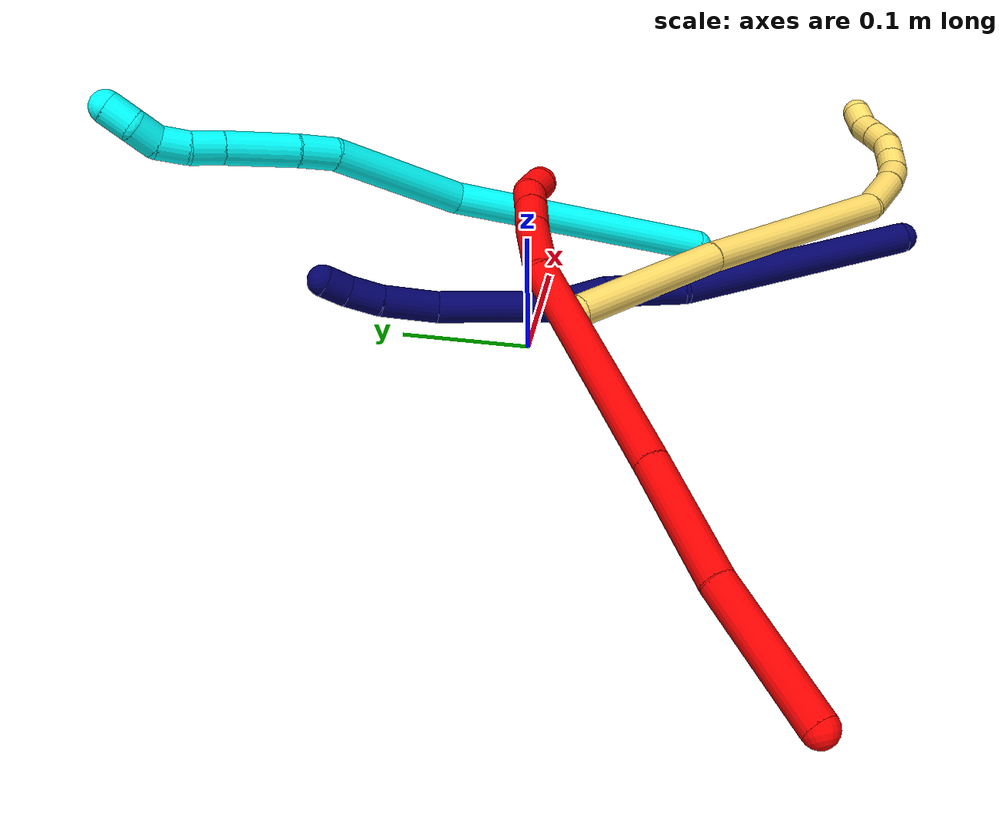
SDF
<sdf version="1.7">
 <world name="default">
  <model name="2">
   <static>0</static>
   <link name="2">
    <collision name="collision-cylinder-e_1_1_4">
     <pose>0.021224 0.005028 -0.04859 -3.03849 0.409868 -2.65495</pose>
     <geometry><cylinder><radius>0.0125</radius><length>0.106522</length></cylinder></geometry>
     <surface>
      <friction><ode><mu>1.16</mu><mu2>1.16</mu2><slip1>0</slip1><slip2>0</slip2></ode></friction>
      <contact><ode><kp>1e+06</kp><kd>1</kd><max_vel>0</max_vel><min_depth>0.001</min_depth></ode></contact>
     </surface>
    </collision>
    <visual name="visual-cylinder-e_1_1_4">
     <pose>0.021224 0.005028 -0.04859 -3.03849 0.409868 -2.65495</pose>
     <geometry><cylinder><radius>0.0125</radius><length>0.106522</length></cylinder></geometry>
     <material><ambient>1 0 0 1</ambient></material>
    </visual>
    <collision name="collision-cylinder-e_2_4_5">
     <pose>0.057779 0.018836 -0.140716 -2.94257 0.332403 -2.06785</pose>
     <geometry><cylinder><radius>0.0125</radius><length>0.093969</length></cylinder></geometry>
     <surface>
      <friction><ode><mu>1.16</mu><mu2>1.16</mu2><slip1>0</slip1><slip2>0</slip2></ode></friction>
      <contact><ode><kp>1e+06</kp><kd>1</kd><max_vel>0</max_vel><min_depth>0.001</min_depth></ode></contact>
     </surface>
    </collision>
    <visual name="visual-cylinder-e_2_4_5">
     <pose>0.057779 0.018836 -0.140716 -2.94257 0.332403 -2.06785</pose>
     <geometry><cylinder><radius>0.0125</radius><length>0.093969</length></cylinder></geometry>
     <material><ambient>1 0 0 1</ambient></material>
    </visual>
    <collision name="collision-cylinder-e_3_5_6">
     <pose>0.104117 0.045667 -0.266436 -2.9254 0.353045 -2.0485</pose>
     <geometry><cylinder><radius>0.0125</radius><length>0.179348</length></cylinder></geometry>
     <surface>
      <friction><ode><mu>1.16</mu><mu2>1.16</mu2><slip1>0</slip1><slip2>0</slip2></ode></friction>
      <contact><ode><kp>1e+06</kp><kd>1</kd><max_vel>0</max_vel><min_depth>0.001</min_depth></ode></contact>
     </surface>
    </collision>
    <visual name="visual-cylinder-e_3_5_6">
     <pose>0.104117 0.045667 -0.266436 -2.9254 0.353045 -2.0485</pose>
     <geometry><cylinder><radius>0.0125</radius><length>0.179348</length></cylinder></geometry>
     <material><ambient>1 0 0 1</ambient></material>
    </visual>
    <collision name="collision-cylinder-e_4_6_7">
     <pose>0.140779 0.076719 -0.370862 -2.61255 0.216169 -0.762028</pose>
     <geometry><cylinder><radius>0.0125</radius><length>0.052754</length></cylinder></geometry>
     <surface>
      <friction><ode><mu>1.16</mu><mu2>1.16</mu2><slip1>0</slip1><slip2>0</slip2></ode></friction>
      <contact><ode><kp>1e+06</kp><kd>1</kd><max_vel>0</max_vel><min_depth>0.001</min_depth></ode></contact>
     </surface>
    </collision>
    <visual name="visual-cylinder-e_4_6_7">
     <pose>0.140779 0.076719 -0.370862 -2.61255 0.216169 -0.762028</pose>
     <geometry><cylinder><radius>0.0125</radius><length>0.052754</length></cylinder></geometry>
     <material><ambient>1 0 0 1</ambient></material>
    </visual>
    <collision name="collision-cylinder-e_5_7_8">
     <pose>0.148341 0.096964 -0.404221 -2.56427 0.14252 -0.471805</pose>
     <geometry><cylinder><radius>0.0125</radius><length>0.026809</length></cylinder></geometry>
     <surface>
      <friction><ode><mu>1.16</mu><mu2>1.16</mu2><slip1>0</slip1><slip2>0</slip2></ode></friction>
      <contact><ode><kp>1e+06</kp><kd>1</kd><max_vel>0</max_vel><min_depth>0.001</min_depth></ode></contact>
     </surface>
    </collision>
    <visual name="visual-cylinder-e_5_7_8">
     <pose>0.148341 0.096964 -0.404221 -2.56427 0.14252 -0.471805</pose>
     <geometry><cylinder><radius>0.0125</radius><length>0.026809</length></cylinder></geometry>
     <material><ambient>1 0 0 1</ambient></material>
    </visual>
    <collision name="collision-cylinder-e_6_8_9">
     <pose>0.152097 0.109674 -0.423827 -2.5693 0.181403 -0.599619</pose>
     <geometry><cylinder><radius>0.0125</radius><length>0.020531</length></cylinder></geometry>
     <surface>
      <friction><ode><mu>1.16</mu><mu2>1.16</mu2><slip1>0</slip1><slip2>0</slip2></ode></friction>
      <contact><ode><kp>1e+06</kp><kd>1</kd><max_vel>0</max_vel><min_depth>0.001</min_depth></ode></contact>
     </surface>
    </collision>
    <visual name="visual-cylinder-e_6_8_9">
     <pose>0.152097 0.109674 -0.423827 -2.5693 0.181403 -0.599619</pose>
     <geometry><cylinder><radius>0.0125</radius><length>0.020531</length></cylinder></geometry>
     <material><ambient>1 0 0 1</ambient></material>
    </visual>
    <collision name="collision-cylinder-e_7_9_2">
     <pose>0.152179 0.123189 -0.438042 -2.18932 -0.177263 0.341276</pose>
     <geometry><cylinder><radius>0.0125</radius><length>0.020068</length></cylinder></geometry>
     <surface>
      <friction><ode><mu>1.16</mu><mu2>1.16</mu2><slip1>0</slip1><slip2>0</slip2></ode></friction>
      <contact><ode><kp>1e+06</kp><kd>1</kd><max_vel>0</max_vel><min_depth>0.001</min_depth></ode></contact>
     </surface>
    </collision>
    <visual name="visual-cylinder-e_7_9_2">
     <pose>0.152179 0.123189 -0.438042 -2.18932 -0.177263 0.341276</pose>
     <geometry><cylinder><radius>0.0125</radius><length>0.020068</length></cylinder></geometry>
     <material><ambient>1 0 0 1</ambient></material>
    </visual>
    <collision name="collision-sphere-2">
     <pose>0.15041 0.131236 -0.443769 0 -0 0</pose>
     <geometry><sphere><radius>0.0125</radius></sphere></geometry>
     <surface>
      <friction><ode><mu>1.16</mu><mu2>1.16</mu2><slip1>0</slip1><slip2>0</slip2></ode></friction>
      <contact><ode><kp>1e+06</kp><kd>1</kd><max_vel>0</max_vel><min_depth>0.001</min_depth></ode></contact>
     </surface>
    </collision>
    <visual name="visual-sphere-2">
     <pose>0.15041 0.131236 -0.443769 0 -0 0</pose>
     <geometry><sphere><radius>0.0125</radius></sphere></geometry>
     <material><ambient>1 0 0 1</ambient></material>
    </visual>
    <collision name="collision-sphere-9">
     <pose>0.153949 0.115142 -0.432315 0 -0 0</pose>
     <geometry><sphere><radius>0.0125</radius></sphere></geometry>
     <surface>
      <friction><ode><mu>1.16</mu><mu2>1.16</mu2><slip1>0</slip1><slip2>0</slip2></ode></friction>
      <contact><ode><kp>1e+06</kp><kd>1</kd><max_vel>0</max_vel><min_depth>0.001</min_depth></ode></contact>
     </surface>
    </collision>
    <visual name="visual-sphere-9">
     <pose>0.153949 0.115142 -0.432315 0 -0 0</pose>
     <geometry><sphere><radius>0.0125</radius></sphere></geometry>
     <material><ambient>1 0 0 1</ambient></material>
    </visual>
    <collision name="collision-sphere-4">
     <pose>0.042448 0.010055 -0.09718 0 -0 0</pose>
     <geometry><sphere><radius>0.0125</radius></sphere></geometry>
     <surface>
      <friction><ode><mu>1.16</mu><mu2>1.16</mu2><slip1>0</slip1><slip2>0</slip2></ode></friction>
      <contact><ode><kp>1e+06</kp><kd>1</kd><max_vel>0</max_vel><min_depth>0.001</min_depth></ode></contact>
     </surface>
    </collision>
    <visual name="visual-sphere-4">
     <pose>0.042448 0.010055 -0.09718 0 -0 0</pose>
     <geometry><sphere><radius>0.0125</radius></sphere></geometry>
     <material><ambient>1 0 0 1</ambient></material>
    </visual>
    <collision name="collision-sphere-1">
     <geometry><sphere><radius>0.0125</radius></sphere></geometry>
     <surface>
      <friction><ode><mu>1.16</mu><mu2>1.16</mu2><slip1>0</slip1><slip2>0</slip2></ode></friction>
      <contact><ode><kp>1e+06</kp><kd>1</kd><max_vel>0</max_vel><min_depth>0.001</min_depth></ode></contact>
     </surface>
    </collision>
    <visual name="visual-sphere-1">
     <geometry><sphere><radius>0.0125</radius></sphere></geometry>
     <material><ambient>1 0 0 1</ambient></material>
    </visual>
    <collision name="collision-sphere-8">
     <pose>0.150245 0.104206 -0.415339 0 -0 0</pose>
     <geometry><sphere><radius>0.0125</radius></sphere></geometry>
     <surface>
      <friction><ode><mu>1.16</mu><mu2>1.16</mu2><slip1>0</slip1><slip2>0</slip2></ode></friction>
      <contact><ode><kp>1e+06</kp><kd>1</kd><max_vel>0</max_vel><min_depth>0.001</min_depth></ode></contact>
     </surface>
    </collision>
    <visual name="visual-sphere-8">
     <pose>0.150245 0.104206 -0.415339 0 -0 0</pose>
     <geometry><sphere><radius>0.0125</radius></sphere></geometry>
     <material><ambient>1 0 0 1</ambient></material>
    </visual>
    <collision name="collision-sphere-5">
     <pose>0.073111 0.027617 -0.184252 0 -0 0</pose>
     <geometry><sphere><radius>0.0125</radius></sphere></geometry>
     <surface>
      <friction><ode><mu>1.16</mu><mu2>1.16</mu2><slip1>0</slip1><slip2>0</slip2></ode></friction>
      <contact><ode><kp>1e+06</kp><kd>1</kd><max_vel>0</max_vel><min_depth>0.001</min_depth></ode></contact>
     </surface>
    </collision>
    <visual name="visual-sphere-5">
     <pose>0.073111 0.027617 -0.184252 0 -0 0</pose>
     <geometry><sphere><radius>0.0125</radius></sphere></geometry>
     <material><ambient>1 0 0 1</ambient></material>
    </visual>
    <collision name="collision-sphere-6">
     <pose>0.135122 0.063717 -0.348621 0 -0 0</pose>
     <geometry><sphere><radius>0.0125</radius></sphere></geometry>
     <surface>
      <friction><ode><mu>1.16</mu><mu2>1.16</mu2><slip1>0</slip1><slip2>0</slip2></ode></friction>
      <contact><ode><kp>1e+06</kp><kd>1</kd><max_vel>0</max_vel><min_depth>0.001</min_depth></ode></contact>
     </surface>
    </collision>
    <visual name="visual-sphere-6">
     <pose>0.135122 0.063717 -0.348621 0 -0 0</pose>
     <geometry><sphere><radius>0.0125</radius></sphere></geometry>
     <material><ambient>1 0 0 1</ambient></material>
    </visual>
    <collision name="collision-sphere-7">
     <pose>0.146437 0.089722 -0.393103 0 -0 0</pose>
     <geometry><sphere><radius>0.0125</radius></sphere></geometry>
     <surface>
      <friction><ode><mu>1.16</mu><mu2>1.16</mu2><slip1>0</slip1><slip2>0</slip2></ode></friction>
      <contact><ode><kp>1e+06</kp><kd>1</kd><max_vel>0</max_vel><min_depth>0.001</min_depth></ode></contact>
     </surface>
    </collision>
    <visual name="visual-sphere-7">
     <pose>0.146437 0.089722 -0.393103 0 -0 0</pose>
     <geometry><sphere><radius>0.0125</radius></sphere></geometry>
     <material><ambient>1 0 0 1</ambient></material>
    </visual>
    <inertial>
     <pose>0.087887 0.043733 -0.228154 0 -0 0</pose>
     <mass>0.5</mass>
     <inertia>
      <ixx>-0.000825</ixx>
      <ixy>0</ixy>
      <ixz>0</ixz>
      <iyy>-0.000141</iyy>
      <iyz>0</iyz>
      <izz>-0.000404</izz>
     </inertia>
    </inertial>
   </link>
   <pose>-0.345363 -0.230359 0.012492 -2.30082 0.536684 1.57643</pose>
  </model>
  <model name="3">
   <static>0</static>
   <link name="3">
    <collision name="collision-cylinder-e_1_1_4">
     <pose>-0.036321 0.097602 0.021806 -1.35099 -0.348364 0.280132</pose>
     <geometry><cylinder><radius>0.0125</radius><length>0.212799</length></cylinder></geometry>
     <surface>
      <friction><ode><mu>1.16</mu><mu2>1.16</mu2><slip1>0</slip1><slip2>0</slip2></ode></friction>
      <contact><ode><kp>1e+06</kp><kd>1</kd><max_vel>0</max_vel><min_depth>0.001</min_depth></ode></contact>
     </surface>
    </collision>
    <visual name="visual-cylinder-e_1_1_4">
     <pose>-0.036321 0.097602 0.021806 -1.35099 -0.348364 0.280132</pose>
     <geometry><cylinder><radius>0.0125</radius><length>0.212799</length></cylinder></geometry>
     <material><ambient>0.003922 1 0.996078 1</ambient></material>
    </visual>
    <collision name="collision-cylinder-e_2_4_5">
     <pose>-0.082223 0.24405 0.069742 -1.07958 -0.171274 0.102779</pose>
     <geometry><cylinder><radius>0.0125</radius><length>0.112435</length></cylinder></geometry>
     <surface>
      <friction><ode><mu>1.16</mu><mu2>1.16</mu2><slip1>0</slip1><slip2>0</slip2></ode></friction>
      <contact><ode><kp>1e+06</kp><kd>1</kd><max_vel>0</max_vel><min_depth>0.001</min_depth></ode></contact>
     </surface>
    </collision>
    <visual name="visual-cylinder-e_2_4_5">
     <pose>-0.082223 0.24405 0.069742 -1.07958 -0.171274 0.102779</pose>
     <geometry><cylinder><radius>0.0125</radius><length>0.112435</length></cylinder></geometry>
     <material><ambient>0.003922 1 0.996078 1</ambient></material>
    </visual>
    <collision name="collision-cylinder-e_3_5_6">
     <pose>-0.097825 0.305124 0.101991 -1.10686 -0.414722 0.258517</pose>
     <geometry><cylinder><radius>0.0125</radius><length>0.029882</length></cylinder></geometry>
     <surface>
      <friction><ode><mu>1.16</mu><mu2>1.16</mu2><slip1>0</slip1><slip2>0</slip2></ode></friction>
      <contact><ode><kp>1e+06</kp><kd>1</kd><max_vel>0</max_vel><min_depth>0.001</min_depth></ode></contact>
     </surface>
    </collision>
    <visual name="visual-cylinder-e_3_5_6">
     <pose>-0.097825 0.305124 0.101991 -1.10686 -0.414722 0.258517</pose>
     <geometry><cylinder><radius>0.0125</radius><length>0.029882</length></cylinder></geometry>
     <material><ambient>0.003922 1 0.996078 1</ambient></material>
    </visual>
    <collision name="collision-cylinder-e_4_6_7">
     <pose>-0.116702 0.340048 0.117574 -1.17569 -0.481771 0.324551</pose>
     <geometry><cylinder><radius>0.0125</radius><length>0.055496</length></cylinder></geometry>
     <surface>
      <friction><ode><mu>1.16</mu><mu2>1.16</mu2><slip1>0</slip1><slip2>0</slip2></ode></friction>
      <contact><ode><kp>1e+06</kp><kd>1</kd><max_vel>0</max_vel><min_depth>0.001</min_depth></ode></contact>
     </surface>
    </collision>
    <visual name="visual-cylinder-e_4_6_7">
     <pose>-0.116702 0.340048 0.117574 -1.17569 -0.481771 0.324551</pose>
     <geometry><cylinder><radius>0.0125</radius><length>0.055496</length></cylinder></geometry>
     <material><ambient>0.003922 1 0.996078 1</ambient></material>
    </visual>
    <collision name="collision-cylinder-e_5_7_8">
     <pose>-0.135594 0.372405 0.131483 -1.13969 -0.516148 0.335093</pose>
     <geometry><cylinder><radius>0.0125</radius><length>0.024456</length></cylinder></geometry>
     <surface>
      <friction><ode><mu>1.16</mu><mu2>1.16</mu2><slip1>0</slip1><slip2>0</slip2></ode></friction>
      <contact><ode><kp>1e+06</kp><kd>1</kd><max_vel>0</max_vel><min_depth>0.001</min_depth></ode></contact>
     </surface>
    </collision>
    <visual name="visual-cylinder-e_5_7_8">
     <pose>-0.135594 0.372405 0.131483 -1.13969 -0.516148 0.335093</pose>
     <geometry><cylinder><radius>0.0125</radius><length>0.024456</length></cylinder></geometry>
     <material><ambient>0.003922 1 0.996078 1</ambient></material>
    </visual>
    <collision name="collision-cylinder-e_6_8_9">
     <pose>-0.145642 0.392329 0.138918 -1.28717 -0.359125 0.270659</pose>
     <geometry><cylinder><radius>0.0125</radius><length>0.022834</length></cylinder></geometry>
     <surface>
      <friction><ode><mu>1.16</mu><mu2>1.16</mu2><slip1>0</slip1><slip2>0</slip2></ode></friction>
      <contact><ode><kp>1e+06</kp><kd>1</kd><max_vel>0</max_vel><min_depth>0.001</min_depth></ode></contact>
     </surface>
    </collision>
    <visual name="visual-cylinder-e_6_8_9">
     <pose>-0.145642 0.392329 0.138918 -1.28717 -0.359125 0.270659</pose>
     <geometry><cylinder><radius>0.0125</radius><length>0.022834</length></cylinder></geometry>
     <material><ambient>0.003922 1 0.996078 1</ambient></material>
    </visual>
    <collision name="collision-cylinder-e_7_9_10">
     <pose>-0.148602 0.412001 0.145855 -1.17379 0.102761 -0.068377</pose>
     <geometry><cylinder><radius>0.0125</radius><length>0.020515</length></cylinder></geometry>
     <surface>
      <friction><ode><mu>1.16</mu><mu2>1.16</mu2><slip1>0</slip1><slip2>0</slip2></ode></friction>
      <contact><ode><kp>1e+06</kp><kd>1</kd><max_vel>0</max_vel><min_depth>0.001</min_depth></ode></contact>
     </surface>
    </collision>
    <visual name="visual-cylinder-e_7_9_10">
     <pose>-0.148602 0.412001 0.145855 -1.17379 0.102761 -0.068377</pose>
     <geometry><cylinder><radius>0.0125</radius><length>0.020515</length></cylinder></geometry>
     <material><ambient>0.003922 1 0.996078 1</ambient></material>
    </visual>
    <collision name="collision-cylinder-e_8_10_2">
     <pose>-0.146898 0.43218 0.149626 -1.58694 0.060417 -0.0614</pose>
     <geometry><cylinder><radius>0.0125</radius><length>0.021582</length></cylinder></geometry>
     <surface>
      <friction><ode><mu>1.16</mu><mu2>1.16</mu2><slip1>0</slip1><slip2>0</slip2></ode></friction>
      <contact><ode><kp>1e+06</kp><kd>1</kd><max_vel>0</max_vel><min_depth>0.001</min_depth></ode></contact>
     </surface>
    </collision>
    <visual name="visual-cylinder-e_8_10_2">
     <pose>-0.146898 0.43218 0.149626 -1.58694 0.060417 -0.0614</pose>
     <geometry><cylinder><radius>0.0125</radius><length>0.021582</length></cylinder></geometry>
     <material><ambient>0.003922 1 0.996078 1</ambient></material>
    </visual>
    <collision name="collision-sphere-2">
     <pose>-0.146247 0.44295 0.149452 0 -0 0</pose>
     <geometry><sphere><radius>0.0125</radius></sphere></geometry>
     <surface>
      <friction><ode><mu>1.16</mu><mu2>1.16</mu2><slip1>0</slip1><slip2>0</slip2></ode></friction>
      <contact><ode><kp>1e+06</kp><kd>1</kd><max_vel>0</max_vel><min_depth>0.001</min_depth></ode></contact>
     </surface>
    </collision>
    <visual name="visual-sphere-2">
     <pose>-0.146247 0.44295 0.149452 0 -0 0</pose>
     <geometry><sphere><radius>0.0125</radius></sphere></geometry>
     <material><ambient>0.003922 1 0.996078 1</ambient></material>
    </visual>
    <collision name="collision-sphere-10">
     <pose>-0.14755 0.42141 0.1498 0 -0 0</pose>
     <geometry><sphere><radius>0.0125</radius></sphere></geometry>
     <surface>
      <friction><ode><mu>1.16</mu><mu2>1.16</mu2><slip1>0</slip1><slip2>0</slip2></ode></friction>
      <contact><ode><kp>1e+06</kp><kd>1</kd><max_vel>0</max_vel><min_depth>0.001</min_depth></ode></contact>
     </surface>
    </collision>
    <visual name="visual-sphere-10">
     <pose>-0.14755 0.42141 0.1498 0 -0 0</pose>
     <geometry><sphere><radius>0.0125</radius></sphere></geometry>
     <material><ambient>0.003922 1 0.996078 1</ambient></material>
    </visual>
    <collision name="collision-sphere-9">
     <pose>-0.149654 0.402591 0.141909 0 -0 0</pose>
     <geometry><sphere><radius>0.0125</radius></sphere></geometry>
     <surface>
      <friction><ode><mu>1.16</mu><mu2>1.16</mu2><slip1>0</slip1><slip2>0</slip2></ode></friction>
      <contact><ode><kp>1e+06</kp><kd>1</kd><max_vel>0</max_vel><min_depth>0.001</min_depth></ode></contact>
     </surface>
    </collision>
    <visual name="visual-sphere-9">
     <pose>-0.149654 0.402591 0.141909 0 -0 0</pose>
     <geometry><sphere><radius>0.0125</radius></sphere></geometry>
     <material><ambient>0.003922 1 0.996078 1</ambient></material>
    </visual>
    <collision name="collision-sphere-4">
     <pose>-0.072641 0.195204 0.043613 0 -0 0</pose>
     <geometry><sphere><radius>0.0125</radius></sphere></geometry>
     <surface>
      <friction><ode><mu>1.16</mu><mu2>1.16</mu2><slip1>0</slip1><slip2>0</slip2></ode></friction>
      <contact><ode><kp>1e+06</kp><kd>1</kd><max_vel>0</max_vel><min_depth>0.001</min_depth></ode></contact>
     </surface>
    </collision>
    <visual name="visual-sphere-4">
     <pose>-0.072641 0.195204 0.043613 0 -0 0</pose>
     <geometry><sphere><radius>0.0125</radius></sphere></geometry>
     <material><ambient>0.003922 1 0.996078 1</ambient></material>
    </visual>
    <collision name="collision-sphere-1">
     <geometry><sphere><radius>0.0125</radius></sphere></geometry>
     <surface>
      <friction><ode><mu>1.16</mu><mu2>1.16</mu2><slip1>0</slip1><slip2>0</slip2></ode></friction>
      <contact><ode><kp>1e+06</kp><kd>1</kd><max_vel>0</max_vel><min_depth>0.001</min_depth></ode></contact>
     </surface>
    </collision>
    <visual name="visual-sphere-1">
     <geometry><sphere><radius>0.0125</radius></sphere></geometry>
     <material><ambient>0.003922 1 0.996078 1</ambient></material>
    </visual>
    <collision name="collision-sphere-8">
     <pose>-0.141629 0.382067 0.135927 0 -0 0</pose>
     <geometry><sphere><radius>0.0125</radius></sphere></geometry>
     <surface>
      <friction><ode><mu>1.16</mu><mu2>1.16</mu2><slip1>0</slip1><slip2>0</slip2></ode></friction>
      <contact><ode><kp>1e+06</kp><kd>1</kd><max_vel>0</max_vel><min_depth>0.001</min_depth></ode></contact>
     </surface>
    </collision>
    <visual name="visual-sphere-8">
     <pose>-0.141629 0.382067 0.135927 0 -0 0</pose>
     <geometry><sphere><radius>0.0125</radius></sphere></geometry>
     <material><ambient>0.003922 1 0.996078 1</ambient></material>
    </visual>
    <collision name="collision-sphere-5">
     <pose>-0.091805 0.292895 0.095872 0 -0 0</pose>
     <geometry><sphere><radius>0.0125</radius></sphere></geometry>
     <surface>
      <friction><ode><mu>1.16</mu><mu2>1.16</mu2><slip1>0</slip1><slip2>0</slip2></ode></friction>
      <contact><ode><kp>1e+06</kp><kd>1</kd><max_vel>0</max_vel><min_depth>0.001</min_depth></ode></contact>
     </surface>
    </collision>
    <visual name="visual-sphere-5">
     <pose>-0.091805 0.292895 0.095872 0 -0 0</pose>
     <geometry><sphere><radius>0.0125</radius></sphere></geometry>
     <material><ambient>0.003922 1 0.996078 1</ambient></material>
    </visual>
    <collision name="collision-sphere-6">
     <pose>-0.103845 0.317353 0.10811 0 -0 0</pose>
     <geometry><sphere><radius>0.0125</radius></sphere></geometry>
     <surface>
      <friction><ode><mu>1.16</mu><mu2>1.16</mu2><slip1>0</slip1><slip2>0</slip2></ode></friction>
      <contact><ode><kp>1e+06</kp><kd>1</kd><max_vel>0</max_vel><min_depth>0.001</min_depth></ode></contact>
     </surface>
    </collision>
    <visual name="visual-sphere-6">
     <pose>-0.103845 0.317353 0.10811 0 -0 0</pose>
     <geometry><sphere><radius>0.0125</radius></sphere></geometry>
     <material><ambient>0.003922 1 0.996078 1</ambient></material>
    </visual>
    <collision name="collision-sphere-7">
     <pose>-0.129559 0.362744 0.127039 0 -0 0</pose>
     <geometry><sphere><radius>0.0125</radius></sphere></geometry>
     <surface>
      <friction><ode><mu>1.16</mu><mu2>1.16</mu2><slip1>0</slip1><slip2>0</slip2></ode></friction>
      <contact><ode><kp>1e+06</kp><kd>1</kd><max_vel>0</max_vel><min_depth>0.001</min_depth></ode></contact>
     </surface>
    </collision>
    <visual name="visual-sphere-7">
     <pose>-0.129559 0.362744 0.127039 0 -0 0</pose>
     <geometry><sphere><radius>0.0125</radius></sphere></geometry>
     <material><ambient>0.003922 1 0.996078 1</ambient></material>
    </visual>
    <inertial>
     <pose>-0.078468 0.224088 0.069327 0 -0 0</pose>
     <mass>0.5</mass>
     <inertia>
      <ixx>0.001095</ixx>
      <ixy>0</ixy>
      <ixz>0</ixz>
      <iyy>0.000581</iyy>
      <iyz>0</iyz>
      <izz>-0.000554</izz>
     </inertia>
    </inertial>
   </link>
   <pose>0.14833 -0.11691 0.011496 0.848664 -0.80192 -0.720211</pose>
  </model>
  <model name="5">
   <static>0</static>
   <link name="5">
    <collision name="collision-cylinder-e_1_1_4">
     <pose>0.022988 -0.006616 0.064241 0.102629 0.341968 0.017736</pose>
     <geometry><cylinder><radius>0.0125</radius><length>0.1371</length></cylinder></geometry>
     <surface>
      <friction><ode><mu>1.16</mu><mu2>1.16</mu2><slip1>0</slip1><slip2>0</slip2></ode></friction>
      <contact><ode><kp>1e+06</kp><kd>1</kd><max_vel>0</max_vel><min_depth>0.001</min_depth></ode></contact>
     </surface>
    </collision>
    <visual name="visual-cylinder-e_1_1_4">
     <pose>0.022988 -0.006616 0.064241 0.102629 0.341968 0.017736</pose>
     <geometry><cylinder><radius>0.0125</radius><length>0.1371</length></cylinder></geometry>
     <material><ambient>1 0.858824 0.4 1</ambient></material>
    </visual>
    <collision name="collision-cylinder-e_2_4_5">
     <pose>0.075687 -0.016603 0.217988 0.037635 0.320297 0.00608</pose>
     <geometry><cylinder><radius>0.0125</radius><length>0.188739</length></cylinder></geometry>
     <surface>
      <friction><ode><mu>1.16</mu><mu2>1.16</mu2><slip1>0</slip1><slip2>0</slip2></ode></friction>
      <contact><ode><kp>1e+06</kp><kd>1</kd><max_vel>0</max_vel><min_depth>0.001</min_depth></ode></contact>
     </surface>
    </collision>
    <visual name="visual-cylinder-e_2_4_5">
     <pose>0.075687 -0.016603 0.217988 0.037635 0.320297 0.00608</pose>
     <geometry><cylinder><radius>0.0125</radius><length>0.188739</length></cylinder></geometry>
     <material><ambient>1 0.858824 0.4 1</ambient></material>
    </visual>
    <collision name="collision-cylinder-e_3_5_6">
     <pose>0.105523 -0.026989 0.330857 0.291731 0.005064 0.000744</pose>
     <geometry><cylinder><radius>0.0125</radius><length>0.048786</length></cylinder></geometry>
     <surface>
      <friction><ode><mu>1.16</mu><mu2>1.16</mu2><slip1>0</slip1><slip2>0</slip2></ode></friction>
      <contact><ode><kp>1e+06</kp><kd>1</kd><max_vel>0</max_vel><min_depth>0.001</min_depth></ode></contact>
     </surface>
    </collision>
    <visual name="visual-cylinder-e_3_5_6">
     <pose>0.105523 -0.026989 0.330857 0.291731 0.005064 0.000744</pose>
     <geometry><cylinder><radius>0.0125</radius><length>0.048786</length></cylinder></geometry>
     <material><ambient>1 0.858824 0.4 1</ambient></material>
    </visual>
    <collision name="collision-cylinder-e_4_6_7">
     <pose>0.103811 -0.038056 0.365555 0.343326 -0.151304 -0.02628</pose>
     <geometry><cylinder><radius>0.0125</radius><length>0.024355</length></cylinder></geometry>
     <surface>
      <friction><ode><mu>1.16</mu><mu2>1.16</mu2><slip1>0</slip1><slip2>0</slip2></ode></friction>
      <contact><ode><kp>1e+06</kp><kd>1</kd><max_vel>0</max_vel><min_depth>0.001</min_depth></ode></contact>
     </surface>
    </collision>
    <visual name="visual-cylinder-e_4_6_7">
     <pose>0.103811 -0.038056 0.365555 0.343326 -0.151304 -0.02628</pose>
     <geometry><cylinder><radius>0.0125</radius><length>0.024355</length></cylinder></geometry>
     <material><ambient>1 0.858824 0.4 1</ambient></material>
    </visual>
    <collision name="collision-cylinder-e_5_7_8">
     <pose>0.098404 -0.047812 0.384585 0.637928 -0.356946 -0.119005</pose>
     <geometry><cylinder><radius>0.0125</radius><length>0.020443</length></cylinder></geometry>
     <surface>
      <friction><ode><mu>1.16</mu><mu2>1.16</mu2><slip1>0</slip1><slip2>0</slip2></ode></friction>
      <contact><ode><kp>1e+06</kp><kd>1</kd><max_vel>0</max_vel><min_depth>0.001</min_depth></ode></contact>
     </surface>
    </collision>
    <visual name="visual-cylinder-e_5_7_8">
     <pose>0.098404 -0.047812 0.384585 0.637928 -0.356946 -0.119005</pose>
     <geometry><cylinder><radius>0.0125</radius><length>0.020443</length></cylinder></geometry>
     <material><ambient>1 0.858824 0.4 1</ambient></material>
    </visual>
    <collision name="collision-cylinder-e_6_8_9">
     <pose>0.091196 -0.059546 0.399381 0.703901 -0.372135 -0.138043</pose>
     <geometry><cylinder><radius>0.0125</radius><length>0.020003</length></cylinder></geometry>
     <surface>
      <friction><ode><mu>1.16</mu><mu2>1.16</mu2><slip1>0</slip1><slip2>0</slip2></ode></friction>
      <contact><ode><kp>1e+06</kp><kd>1</kd><max_vel>0</max_vel><min_depth>0.001</min_depth></ode></contact>
     </surface>
    </collision>
    <visual name="visual-cylinder-e_6_8_9">
     <pose>0.091196 -0.059546 0.399381 0.703901 -0.372135 -0.138043</pose>
     <geometry><cylinder><radius>0.0125</radius><length>0.020003</length></cylinder></geometry>
     <material><ambient>1 0.858824 0.4 1</ambient></material>
    </visual>
    <collision name="collision-cylinder-e_7_9_10">
     <pose>0.080284 -0.070623 0.411663 0.772522 -0.7884 -0.335172</pose>
     <geometry><cylinder><radius>0.0125</radius><length>0.020517</length></cylinder></geometry>
     <surface>
      <friction><ode><mu>1.16</mu><mu2>1.16</mu2><slip1>0</slip1><slip2>0</slip2></ode></friction>
      <contact><ode><kp>1e+06</kp><kd>1</kd><max_vel>0</max_vel><min_depth>0.001</min_depth></ode></contact>
     </surface>
    </collision>
    <visual name="visual-cylinder-e_7_9_10">
     <pose>0.080284 -0.070623 0.411663 0.772522 -0.7884 -0.335172</pose>
     <geometry><cylinder><radius>0.0125</radius><length>0.020517</length></cylinder></geometry>
     <material><ambient>1 0.858824 0.4 1</ambient></material>
    </visual>
    <collision name="collision-cylinder-e_8_10_11">
     <pose>0.065681 -0.080143 0.422003 0.714016 -0.820596 -0.321688</pose>
     <geometry><cylinder><radius>0.0125</radius><length>0.020032</length></cylinder></geometry>
     <surface>
      <friction><ode><mu>1.16</mu><mu2>1.16</mu2><slip1>0</slip1><slip2>0</slip2></ode></friction>
      <contact><ode><kp>1e+06</kp><kd>1</kd><max_vel>0</max_vel><min_depth>0.001</min_depth></ode></contact>
     </surface>
    </collision>
    <visual name="visual-cylinder-e_8_10_11">
     <pose>0.065681 -0.080143 0.422003 0.714016 -0.820596 -0.321688</pose>
     <geometry><cylinder><radius>0.0125</radius><length>0.020032</length></cylinder></geometry>
     <material><ambient>1 0.858824 0.4 1</ambient></material>
    </visual>
    <collision name="collision-cylinder-e_9_11_2">
     <pose>0.053686 -0.091613 0.432594 0.910907 -0.48493 -0.24111</pose>
     <geometry><cylinder><radius>0.0125</radius><length>0.020024</length></cylinder></geometry>
     <surface>
      <friction><ode><mu>1.16</mu><mu2>1.16</mu2><slip1>0</slip1><slip2>0</slip2></ode></friction>
      <contact><ode><kp>1e+06</kp><kd>1</kd><max_vel>0</max_vel><min_depth>0.001</min_depth></ode></contact>
     </surface>
    </collision>
    <visual name="visual-cylinder-e_9_11_2">
     <pose>0.053686 -0.091613 0.432594 0.910907 -0.48493 -0.24111</pose>
     <geometry><cylinder><radius>0.0125</radius><length>0.020024</length></cylinder></geometry>
     <material><ambient>1 0.858824 0.4 1</ambient></material>
    </visual>
    <collision name="collision-sphere-2">
     <pose>0.049019 -0.098611 0.438024 0 -0 0</pose>
     <geometry><sphere><radius>0.0125</radius></sphere></geometry>
     <surface>
      <friction><ode><mu>1.16</mu><mu2>1.16</mu2><slip1>0</slip1><slip2>0</slip2></ode></friction>
      <contact><ode><kp>1e+06</kp><kd>1</kd><max_vel>0</max_vel><min_depth>0.001</min_depth></ode></contact>
     </surface>
    </collision>
    <visual name="visual-sphere-2">
     <pose>0.049019 -0.098611 0.438024 0 -0 0</pose>
     <geometry><sphere><radius>0.0125</radius></sphere></geometry>
     <material><ambient>1 0.858824 0.4 1</ambient></material>
    </visual>
    <collision name="collision-sphere-11">
     <pose>0.058353 -0.084615 0.427164 0 -0 0</pose>
     <geometry><sphere><radius>0.0125</radius></sphere></geometry>
     <surface>
      <friction><ode><mu>1.16</mu><mu2>1.16</mu2><slip1>0</slip1><slip2>0</slip2></ode></friction>
      <contact><ode><kp>1e+06</kp><kd>1</kd><max_vel>0</max_vel><min_depth>0.001</min_depth></ode></contact>
     </surface>
    </collision>
    <visual name="visual-sphere-11">
     <pose>0.058353 -0.084615 0.427164 0 -0 0</pose>
     <geometry><sphere><radius>0.0125</radius></sphere></geometry>
     <material><ambient>1 0.858824 0.4 1</ambient></material>
    </visual>
    <collision name="collision-sphere-10">
     <pose>0.073008 -0.075671 0.416842 0 -0 0</pose>
     <geometry><sphere><radius>0.0125</radius></sphere></geometry>
     <surface>
      <friction><ode><mu>1.16</mu><mu2>1.16</mu2><slip1>0</slip1><slip2>0</slip2></ode></friction>
      <contact><ode><kp>1e+06</kp><kd>1</kd><max_vel>0</max_vel><min_depth>0.001</min_depth></ode></contact>
     </surface>
    </collision>
    <visual name="visual-sphere-10">
     <pose>0.073008 -0.075671 0.416842 0 -0 0</pose>
     <geometry><sphere><radius>0.0125</radius></sphere></geometry>
     <material><ambient>1 0.858824 0.4 1</ambient></material>
    </visual>
    <collision name="collision-sphere-9">
     <pose>0.087559 -0.065576 0.406483 0 -0 0</pose>
     <geometry><sphere><radius>0.0125</radius></sphere></geometry>
     <surface>
      <friction><ode><mu>1.16</mu><mu2>1.16</mu2><slip1>0</slip1><slip2>0</slip2></ode></friction>
      <contact><ode><kp>1e+06</kp><kd>1</kd><max_vel>0</max_vel><min_depth>0.001</min_depth></ode></contact>
     </surface>
    </collision>
    <visual name="visual-sphere-9">
     <pose>0.087559 -0.065576 0.406483 0 -0 0</pose>
     <geometry><sphere><radius>0.0125</radius></sphere></geometry>
     <material><ambient>1 0.858824 0.4 1</ambient></material>
    </visual>
    <collision name="collision-sphere-4">
     <pose>0.045975 -0.013232 0.128481 0 -0 0</pose>
     <geometry><sphere><radius>0.0125</radius></sphere></geometry>
     <surface>
      <friction><ode><mu>1.16</mu><mu2>1.16</mu2><slip1>0</slip1><slip2>0</slip2></ode></friction>
      <contact><ode><kp>1e+06</kp><kd>1</kd><max_vel>0</max_vel><min_depth>0.001</min_depth></ode></contact>
     </surface>
    </collision>
    <visual name="visual-sphere-4">
     <pose>0.045975 -0.013232 0.128481 0 -0 0</pose>
     <geometry><sphere><radius>0.0125</radius></sphere></geometry>
     <material><ambient>1 0.858824 0.4 1</ambient></material>
    </visual>
    <collision name="collision-sphere-1">
     <geometry><sphere><radius>0.0125</radius></sphere></geometry>
     <surface>
      <friction><ode><mu>1.16</mu><mu2>1.16</mu2><slip1>0</slip1><slip2>0</slip2></ode></friction>
      <contact><ode><kp>1e+06</kp><kd>1</kd><max_vel>0</max_vel><min_depth>0.001</min_depth></ode></contact>
     </surface>
    </collision>
    <visual name="visual-sphere-1">
     <geometry><sphere><radius>0.0125</radius></sphere></geometry>
     <material><ambient>1 0.858824 0.4 1</ambient></material>
    </visual>
    <collision name="collision-sphere-8">
     <pose>0.094832 -0.053516 0.392278 0 -0 0</pose>
     <geometry><sphere><radius>0.0125</radius></sphere></geometry>
     <surface>
      <friction><ode><mu>1.16</mu><mu2>1.16</mu2><slip1>0</slip1><slip2>0</slip2></ode></friction>
      <contact><ode><kp>1e+06</kp><kd>1</kd><max_vel>0</max_vel><min_depth>0.001</min_depth></ode></contact>
     </surface>
    </collision>
    <visual name="visual-sphere-8">
     <pose>0.094832 -0.053516 0.392278 0 -0 0</pose>
     <geometry><sphere><radius>0.0125</radius></sphere></geometry>
     <material><ambient>1 0.858824 0.4 1</ambient></material>
    </visual>
    <collision name="collision-sphere-5">
     <pose>0.105399 -0.019973 0.307495 0 -0 0</pose>
     <geometry><sphere><radius>0.0125</radius></sphere></geometry>
     <surface>
      <friction><ode><mu>1.16</mu><mu2>1.16</mu2><slip1>0</slip1><slip2>0</slip2></ode></friction>
      <contact><ode><kp>1e+06</kp><kd>1</kd><max_vel>0</max_vel><min_depth>0.001</min_depth></ode></contact>
     </surface>
    </collision>
    <visual name="visual-sphere-5">
     <pose>0.105399 -0.019973 0.307495 0 -0 0</pose>
     <geometry><sphere><radius>0.0125</radius></sphere></geometry>
     <material><ambient>1 0.858824 0.4 1</ambient></material>
    </visual>
    <collision name="collision-sphere-6">
     <pose>0.105647 -0.034004 0.35422 0 -0 0</pose>
     <geometry><sphere><radius>0.0125</radius></sphere></geometry>
     <surface>
      <friction><ode><mu>1.16</mu><mu2>1.16</mu2><slip1>0</slip1><slip2>0</slip2></ode></friction>
      <contact><ode><kp>1e+06</kp><kd>1</kd><max_vel>0</max_vel><min_depth>0.001</min_depth></ode></contact>
     </surface>
    </collision>
    <visual name="visual-sphere-6">
     <pose>0.105647 -0.034004 0.35422 0 -0 0</pose>
     <geometry><sphere><radius>0.0125</radius></sphere></geometry>
     <material><ambient>1 0.858824 0.4 1</ambient></material>
    </visual>
    <collision name="collision-sphere-7">
     <pose>0.101976 -0.042109 0.376891 0 -0 0</pose>
     <geometry><sphere><radius>0.0125</radius></sphere></geometry>
     <surface>
      <friction><ode><mu>1.16</mu><mu2>1.16</mu2><slip1>0</slip1><slip2>0</slip2></ode></friction>
      <contact><ode><kp>1e+06</kp><kd>1</kd><max_vel>0</max_vel><min_depth>0.001</min_depth></ode></contact>
     </surface>
    </collision>
    <visual name="visual-sphere-7">
     <pose>0.101976 -0.042109 0.376891 0 -0 0</pose>
     <geometry><sphere><radius>0.0125</radius></sphere></geometry>
     <material><ambient>1 0.858824 0.4 1</ambient></material>
    </visual>
    <inertial>
     <pose>0.065974 -0.026683 0.232816 0 -0 0</pose>
     <mass>0.5</mass>
     <inertia>
      <ixx>0.000775</ixx>
      <ixy>0</ixy>
      <ixz>0</ixz>
      <iyy>0.000803</iyy>
      <iyz>0</iyz>
      <izz>-0.000164</izz>
     </inertia>
    </inertial>
   </link>
   <pose>-0.013016 -0.041413 0.049348 -1.91032 -0.42239 -1.89923</pose>
  </model>
  <model name="7">
   <static>0</static>
   <link name="7">
    <collision name="collision-cylinder-e_1_1_4">
     <pose>-0.020913 0.03051 0.094254 -0.313059 -0.208042 0.032949</pose>
     <geometry><cylinder><radius>0.0125</radius><length>0.202505</length></cylinder></geometry>
     <surface>
      <friction><ode><mu>1.16</mu><mu2>1.16</mu2><slip1>0</slip1><slip2>0</slip2></ode></friction>
      <contact><ode><kp>1e+06</kp><kd>1</kd><max_vel>0</max_vel><min_depth>0.001</min_depth></ode></contact>
     </surface>
    </collision>
    <visual name="visual-cylinder-e_1_1_4">
     <pose>-0.020913 0.03051 0.094254 -0.313059 -0.208042 0.032949</pose>
     <geometry><cylinder><radius>0.0125</radius><length>0.202505</length></cylinder></geometry>
     <material><ambient>0.003922 0 0.403922 1</ambient></material>
    </visual>
    <collision name="collision-cylinder-e_2_4_5">
     <pose>-0.05056 0.06078 0.219684 0.007724 -0.27314 -0.001062</pose>
     <geometry><cylinder><radius>0.0125</radius><length>0.064753</length></cylinder></geometry>
     <surface>
      <friction><ode><mu>1.16</mu><mu2>1.16</mu2><slip1>0</slip1><slip2>0</slip2></ode></friction>
      <contact><ode><kp>1e+06</kp><kd>1</kd><max_vel>0</max_vel><min_depth>0.001</min_depth></ode></contact>
     </surface>
    </collision>
    <visual name="visual-cylinder-e_2_4_5">
     <pose>-0.05056 0.06078 0.219684 0.007724 -0.27314 -0.001062</pose>
     <geometry><cylinder><radius>0.0125</radius><length>0.064753</length></cylinder></geometry>
     <material><ambient>0.003922 0 0.403922 1</ambient></material>
    </visual>
    <collision name="collision-cylinder-e_3_5_6">
     <pose>-0.063744 0.069581 0.271131 -0.419538 -0.197844 0.042253</pose>
     <geometry><cylinder><radius>0.0125</radius><length>0.045277</length></cylinder></geometry>
     <surface>
      <friction><ode><mu>1.16</mu><mu2>1.16</mu2><slip1>0</slip1><slip2>0</slip2></ode></friction>
      <contact><ode><kp>1e+06</kp><kd>1</kd><max_vel>0</max_vel><min_depth>0.001</min_depth></ode></contact>
     </surface>
    </collision>
    <visual name="visual-cylinder-e_3_5_6">
     <pose>-0.063744 0.069581 0.271131 -0.419538 -0.197844 0.042253</pose>
     <geometry><cylinder><radius>0.0125</radius><length>0.045277</length></cylinder></geometry>
     <material><ambient>0.003922 0 0.403922 1</ambient></material>
    </visual>
    <collision name="collision-cylinder-e_4_6_7">
     <pose>-0.082715 0.079063 0.335745 -0.009927 -0.316461 0.001584</pose>
     <geometry><cylinder><radius>0.0125</radius><length>0.093323</length></cylinder></geometry>
     <surface>
      <friction><ode><mu>1.16</mu><mu2>1.16</mu2><slip1>0</slip1><slip2>0</slip2></ode></friction>
      <contact><ode><kp>1e+06</kp><kd>1</kd><max_vel>0</max_vel><min_depth>0.001</min_depth></ode></contact>
     </surface>
    </collision>
    <visual name="visual-cylinder-e_4_6_7">
     <pose>-0.082715 0.079063 0.335745 -0.009927 -0.316461 0.001584</pose>
     <geometry><cylinder><radius>0.0125</radius><length>0.093323</length></cylinder></geometry>
     <material><ambient>0.003922 0 0.403922 1</ambient></material>
    </visual>
    <collision name="collision-cylinder-e_5_7_8">
     <pose>-0.108903 0.084247 0.399194 -0.243372 -0.534977 0.067004</pose>
     <geometry><cylinder><radius>0.0125</radius><length>0.045769</length></cylinder></geometry>
     <surface>
      <friction><ode><mu>1.16</mu><mu2>1.16</mu2><slip1>0</slip1><slip2>0</slip2></ode></friction>
      <contact><ode><kp>1e+06</kp><kd>1</kd><max_vel>0</max_vel><min_depth>0.001</min_depth></ode></contact>
     </surface>
    </collision>
    <visual name="visual-cylinder-e_5_7_8">
     <pose>-0.108903 0.084247 0.399194 -0.243372 -0.534977 0.067004</pose>
     <geometry><cylinder><radius>0.0125</radius><length>0.045769</length></cylinder></geometry>
     <material><ambient>0.003922 0 0.403922 1</ambient></material>
    </visual>
    <collision name="collision-cylinder-e_6_8_9">
     <pose>-0.129348 0.090864 0.428878 -0.175251 -0.685159 0.062642</pose>
     <geometry><cylinder><radius>0.0125</radius><length>0.027745</length></cylinder></geometry>
     <surface>
      <friction><ode><mu>1.16</mu><mu2>1.16</mu2><slip1>0</slip1><slip2>0</slip2></ode></friction>
      <contact><ode><kp>1e+06</kp><kd>1</kd><max_vel>0</max_vel><min_depth>0.001</min_depth></ode></contact>
     </surface>
    </collision>
    <visual name="visual-cylinder-e_6_8_9">
     <pose>-0.129348 0.090864 0.428878 -0.175251 -0.685159 0.062642</pose>
     <geometry><cylinder><radius>0.0125</radius><length>0.027745</length></cylinder></geometry>
     <material><ambient>0.003922 0 0.403922 1</ambient></material>
    </visual>
    <collision name="collision-cylinder-e_7_9_2">
     <pose>-0.145753 0.094686 0.446121 -0.284546 -0.832127 0.126416</pose>
     <geometry><cylinder><radius>0.0125</radius><length>0.020628</length></cylinder></geometry>
     <surface>
      <friction><ode><mu>1.16</mu><mu2>1.16</mu2><slip1>0</slip1><slip2>0</slip2></ode></friction>
      <contact><ode><kp>1e+06</kp><kd>1</kd><max_vel>0</max_vel><min_depth>0.001</min_depth></ode></contact>
     </surface>
    </collision>
    <visual name="visual-cylinder-e_7_9_2">
     <pose>-0.145753 0.094686 0.446121 -0.284546 -0.832127 0.126416</pose>
     <geometry><cylinder><radius>0.0125</radius><length>0.020628</length></cylinder></geometry>
     <material><ambient>0.003922 0 0.403922 1</ambient></material>
    </visual>
    <collision name="collision-sphere-2">
     <pose>-0.153378 0.096636 0.452786 0 -0 0</pose>
     <geometry><sphere><radius>0.0125</radius></sphere></geometry>
     <surface>
      <friction><ode><mu>1.16</mu><mu2>1.16</mu2><slip1>0</slip1><slip2>0</slip2></ode></friction>
      <contact><ode><kp>1e+06</kp><kd>1</kd><max_vel>0</max_vel><min_depth>0.001</min_depth></ode></contact>
     </surface>
    </collision>
    <visual name="visual-sphere-2">
     <pose>-0.153378 0.096636 0.452786 0 -0 0</pose>
     <geometry><sphere><radius>0.0125</radius></sphere></geometry>
     <material><ambient>0.003922 0 0.403922 1</ambient></material>
    </visual>
    <collision name="collision-sphere-9">
     <pose>-0.138127 0.092737 0.439455 0 -0 0</pose>
     <geometry><sphere><radius>0.0125</radius></sphere></geometry>
     <surface>
      <friction><ode><mu>1.16</mu><mu2>1.16</mu2><slip1>0</slip1><slip2>0</slip2></ode></friction>
      <contact><ode><kp>1e+06</kp><kd>1</kd><max_vel>0</max_vel><min_depth>0.001</min_depth></ode></contact>
     </surface>
    </collision>
    <visual name="visual-sphere-9">
     <pose>-0.138127 0.092737 0.439455 0 -0 0</pose>
     <geometry><sphere><radius>0.0125</radius></sphere></geometry>
     <material><ambient>0.003922 0 0.403922 1</ambient></material>
    </visual>
    <collision name="collision-sphere-4">
     <pose>-0.041826 0.061021 0.188509 0 -0 0</pose>
     <geometry><sphere><radius>0.0125</radius></sphere></geometry>
     <surface>
      <friction><ode><mu>1.16</mu><mu2>1.16</mu2><slip1>0</slip1><slip2>0</slip2></ode></friction>
      <contact><ode><kp>1e+06</kp><kd>1</kd><max_vel>0</max_vel><min_depth>0.001</min_depth></ode></contact>
     </surface>
    </collision>
    <visual name="visual-sphere-4">
     <pose>-0.041826 0.061021 0.188509 0 -0 0</pose>
     <geometry><sphere><radius>0.0125</radius></sphere></geometry>
     <material><ambient>0.003922 0 0.403922 1</ambient></material>
    </visual>
    <collision name="collision-sphere-1">
     <geometry><sphere><radius>0.0125</radius></sphere></geometry>
     <surface>
      <friction><ode><mu>1.16</mu><mu2>1.16</mu2><slip1>0</slip1><slip2>0</slip2></ode></friction>
      <contact><ode><kp>1e+06</kp><kd>1</kd><max_vel>0</max_vel><min_depth>0.001</min_depth></ode></contact>
     </surface>
    </collision>
    <visual name="visual-sphere-1">
     <geometry><sphere><radius>0.0125</radius></sphere></geometry>
     <material><ambient>0.003922 0 0.403922 1</ambient></material>
    </visual>
    <collision name="collision-sphere-8">
     <pose>-0.12057 0.088991 0.418301 0 -0 0</pose>
     <geometry><sphere><radius>0.0125</radius></sphere></geometry>
     <surface>
      <friction><ode><mu>1.16</mu><mu2>1.16</mu2><slip1>0</slip1><slip2>0</slip2></ode></friction>
      <contact><ode><kp>1e+06</kp><kd>1</kd><max_vel>0</max_vel><min_depth>0.001</min_depth></ode></contact>
     </surface>
    </collision>
    <visual name="visual-sphere-8">
     <pose>-0.12057 0.088991 0.418301 0 -0 0</pose>
     <geometry><sphere><radius>0.0125</radius></sphere></geometry>
     <material><ambient>0.003922 0 0.403922 1</ambient></material>
    </visual>
    <collision name="collision-sphere-5">
     <pose>-0.059294 0.060539 0.250859 0 -0 0</pose>
     <geometry><sphere><radius>0.0125</radius></sphere></geometry>
     <surface>
      <friction><ode><mu>1.16</mu><mu2>1.16</mu2><slip1>0</slip1><slip2>0</slip2></ode></friction>
      <contact><ode><kp>1e+06</kp><kd>1</kd><max_vel>0</max_vel><min_depth>0.001</min_depth></ode></contact>
     </surface>
    </collision>
    <visual name="visual-sphere-5">
     <pose>-0.059294 0.060539 0.250859 0 -0 0</pose>
     <geometry><sphere><radius>0.0125</radius></sphere></geometry>
     <material><ambient>0.003922 0 0.403922 1</ambient></material>
    </visual>
    <collision name="collision-sphere-6">
     <pose>-0.068193 0.078622 0.291403 0 -0 0</pose>
     <geometry><sphere><radius>0.0125</radius></sphere></geometry>
     <surface>
      <friction><ode><mu>1.16</mu><mu2>1.16</mu2><slip1>0</slip1><slip2>0</slip2></ode></friction>
      <contact><ode><kp>1e+06</kp><kd>1</kd><max_vel>0</max_vel><min_depth>0.001</min_depth></ode></contact>
     </surface>
    </collision>
    <visual name="visual-sphere-6">
     <pose>-0.068193 0.078622 0.291403 0 -0 0</pose>
     <geometry><sphere><radius>0.0125</radius></sphere></geometry>
     <material><ambient>0.003922 0 0.403922 1</ambient></material>
    </visual>
    <collision name="collision-sphere-7">
     <pose>-0.097236 0.079503 0.380087 0 -0 0</pose>
     <geometry><sphere><radius>0.0125</radius></sphere></geometry>
     <surface>
      <friction><ode><mu>1.16</mu><mu2>1.16</mu2><slip1>0</slip1><slip2>0</slip2></ode></friction>
      <contact><ode><kp>1e+06</kp><kd>1</kd><max_vel>0</max_vel><min_depth>0.001</min_depth></ode></contact>
     </surface>
    </collision>
    <visual name="visual-sphere-7">
     <pose>-0.097236 0.079503 0.380087 0 -0 0</pose>
     <geometry><sphere><radius>0.0125</radius></sphere></geometry>
     <material><ambient>0.003922 0 0.403922 1</ambient></material>
    </visual>
    <inertial>
     <pose>-0.059388 0.057946 0.232587 0 -0 0</pose>
     <mass>0.5</mass>
     <inertia><ixx>0.000809</ixx><ixy>0</ixy><ixz>0</ixz><iyy>0.000818</iyy><iyz>0</iyz><izz>1e-06</izz></inertia>
    </inertial>
   </link>
   <pose>0.186185 -0.287235 0.012919 2.56278 1.24325 -1.89483</pose>
  </model>
 </world>
</sdf>
